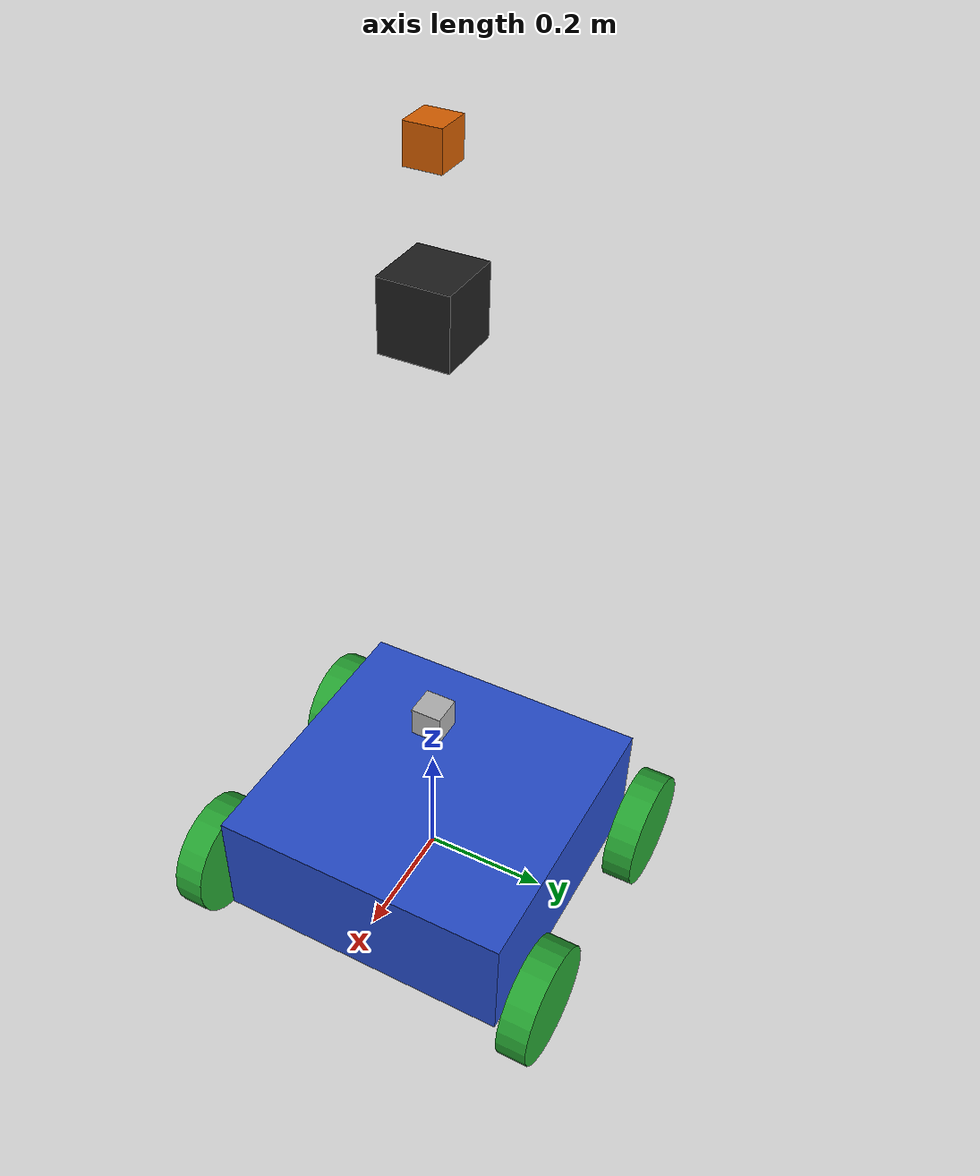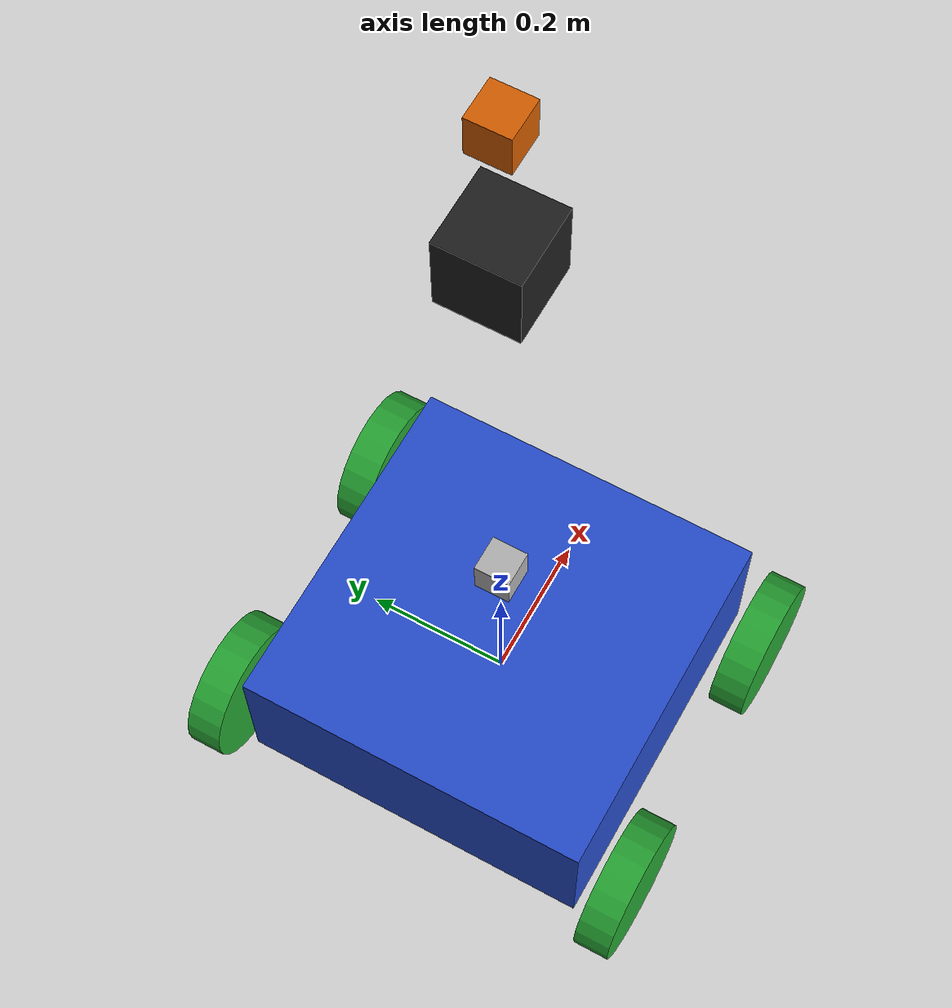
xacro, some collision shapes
<?xml version='1.0'?>

<robot name="simple_robot" xmlns:xacro="http://www.ros.org/wiki/xacro">
	<xacro:property name="robot_name" value="simple_robot" />
	<xacro:property name="robot_chassis_mass" value="15"/>
	<xacro:property name="robot_chassis_length" value="0.2"/>
	<xacro:property name="robot_chassis_radius" value="0.25"/>
	<xacro:property name="robot_caster_wheel_radius" value="0.05"/>
	<xacro:property name="robot_caster_wheel_radius_collision" value="0.0499"/>

	<xacro:property name="robot_wheel_mass" value="5"/>
	<xacro:property name="robot_wheel_length" value="0.05"/>
	<xacro:property name="robot_wheel_radius" value="0.1"/>

	<xacro:property name="camera_mass" value="0.1"/>
	<xacro:property name="hokoyu_mass" value="1e-5"/>
	<xacro:property name="gps_mass" value="0.1"/>
	<xacro:property name="r200_cam_rgb_px" value="0.005"/>
	<xacro:property name="r200_cam_rgb_py" value="0.018"/>
	<xacro:property name="r200_cam_rgb_pz" value="0.013"/>
	<xacro:property name="r200_cam_depth_offset" value="0.01"/>

	<!-- Make Chassis of Bot -->
	<link name="chassis">
		<pose>0 0 0.1 0 0 0</pose>

		<inertial>
			<mass value="${robot_chassis_mass}"/>
      		<origin xyz="0.0 0 0" rpy=" 0 0 0"/>

      		<inertia
      			ixx="0.147116667" ixy="0" ixz="0"
      			iyy="0.334951167" iyz="0"
      			izz="0.3978345"
      		/>
		</inertial>

		<collision name="collision">
			<origin xyz="0 0 0.05" rpy=" 0 0 0"/>
			<geometry>
				<box size="0.5 0.5 0.2"/>
			</geometry>
		</collision>

		<visual name="chassis_visual">
			<origin xyz="0 0 0.05" rpy=" 0 0 0"/>
			<geometry>
				<box size="0.5 0.5 0.2"/>
			</geometry>

		</visual>

	</link>

	<!-- Right Wheel Back -->
	<link name="right_wheel_back">
		<inertial>
			<mass value="${robot_wheel_mass}"/>
			<origin xyz="0 0 0" rpy="0 1.5707 1.5707"/>
			<inertia
				ixx="0.1" ixy="0.0" ixz="0.0"
				iyy="0.1" iyz="0.0"
				izz="0.1"
			/>
		</inertial>

		<visual>
			<origin xyz="0 0 0" rpy="0 1.5707 1.5707"/>
			<geometry>
				<cylinder radius="${robot_wheel_radius}" length="${robot_wheel_length}"/>
			</geometry>
		</visual>

		<collision>
			<origin xyz="0 0 0" rpy="0 1.5707 1.5707"/>
			<geometry>
				<cylinder radius="${robot_wheel_radius}" length="${robot_wheel_length}"/>
			</geometry>
		</collision>

	</link>

	<!-- Right Wheel Front-->
	<link name="right_wheel_front">
		<inertial>
			<mass value="${robot_wheel_mass}"/>
			<origin xyz="0 0 0" rpy="0 1.5707 1.5707"/>
			<inertia
				ixx="0.1" ixy="0.0" ixz="0.0"
				iyy="0.1" iyz="0.0"
				izz="0.1"
			/>
		</inertial>

		<visual>
			<origin xyz="0 0 0" rpy="0 1.5707 1.5707"/>
			<geometry>
				<cylinder radius="${robot_wheel_radius}" length="${robot_wheel_length}"/>
			</geometry>
		</visual>

		<collision>
			<origin xyz="0 0 0" rpy="0 1.5707 1.5707"/>
			<geometry>
				<cylinder radius="${robot_wheel_radius}" length="${robot_wheel_length}"/>
			</geometry>
		</collision>

	</link>

	<!-- Left wheel Back-->
	<link name="left_wheel_back">
		<inertial>
			<mass value="${robot_wheel_mass}"/>
			<origin xyz="0 0 0" rpy="0 1.5707 1.5707"/>
			<inertia
				ixx="0.1" ixy="0.0" ixz="0.0"
				iyy="0.1" iyz="0.0"
				izz="0.1"
			/>
		</inertial>

		<visual>
			<origin xyz="0 0 0" rpy="0 1.5707 1.5707"/>
			<geometry>
				<cylinder radius="${robot_wheel_radius}" length="${robot_wheel_length}"/>
			</geometry>
		</visual>

		<collision>
			<origin xyz="0 0 0" rpy="0 1.5707 1.5707"/>
			<geometry>
				<cylinder radius="${robot_wheel_radius}" length="${robot_wheel_length}"/>
			</geometry>
		</collision>

	</link>

	<!-- Left wheel Front-->
	<link name="left_wheel_front">
		<inertial>
			<mass value="${robot_wheel_mass}"/>
			<origin xyz="0 0 0" rpy="0 1.5707 1.5707"/>
			<inertia
				ixx="0.1" ixy="0.0" ixz="0.0"
				iyy="0.1" iyz="0.0"
				izz="0.1"
			/>
		</inertial>

		<visual>
			<origin xyz="0 0 0" rpy="0 1.5707 1.5707"/>
			<geometry>
				<cylinder radius="${robot_wheel_radius}" length="${robot_wheel_length}"/>
			</geometry>
		</visual>

		<collision>
			<origin xyz="0 0 0" rpy="0 1.5707 1.5707"/>
			<geometry>
				<cylinder radius="${robot_wheel_radius}" length="${robot_wheel_length}"/>
			</geometry>
		</collision>

	</link>

	<!-- Camera -->
	<link name="camera_link">
		<inertial>
			<mass value="${camera_mass}"/>
			<origin xyz="0 0 0" rpy="0 0 0"/>
			<inertia
		        ixx="1e-6" ixy="0.0" ixz="0.0"
		        iyy="1e-6" iyz="0.0"
		        izz="1e-6"
		      />
		</inertial>

		<visual>
			<origin xyz="0 0 0" rpy="0 0 0"/>
			<geometry>
				<box size="0.05 0.05 0.05"/>
			</geometry>
		</visual>

		<collision>
			<origin xyz="0 0 0" rpy="0 0 0"/>
			<geometry>
				<box size="0.05 0.05 0.05"/>
			</geometry>
		</collision>
	</link>

	<!-- Hokuyo Lidar -->
	<link name="base_scan">
		<inertial>
			<mass value="${hokoyu_mass}"/>
			<origin xyz="0 0 0" rpy="0 0 0"/>

			<inertia
		        ixx="1e-6" ixy="0.0" ixz="0.0"
		        iyy="1e-6" iyz="0.0"
		        izz="1e-6"
		      />
		</inertial>

		<visual>
			<origin xyz="0 0 0" rpy="0 0 0"/>
			<geometry>
				<mesh filename="package://turtlebot3_description/meshes/sensors/lds.stl" scale="0.001 0.001 0.001"/>
			</geometry>
		</visual>

		<collision>
			<origin xyz="0 0 0" rpy="0 0 0"/>
			<geometry>
				<box size="0.1 0.1 0.1"/>
			</geometry>
		</collision>
	</link>

	<!-- Gps Lidar -->
	<link name="gps_link">
		<inertial>
			<mass value="${gps_mass}"/>
			<origin xyz="0 0 0" rpy="0 0 0"/>
			<inertia
		        ixx="1e-6" ixy="0.0" ixz="0.0"
		        iyy="1e-6" iyz="0.0"
		        izz="1e-6"
		      />
		</inertial>

		<visual>
			<origin xyz="0 0 0" rpy="0 0 0"/>
			<geometry>
				<box size="0.05 0.05 0.05"/>
			</geometry>
		</visual>

		<collision>
			<origin xyz="0 0 0" rpy="0 0 0"/>
			<geometry>
				<box size="0.05 0.05 0.05"/>
			</geometry>
		</collision>
	</link>

	<!-- Project center to the ground -->
	<link name="robot_footprint"></link>

	<!-- Define Joints -->

	<!-- Right Wheel Joint Back-->
	<joint type="continuous" name="right_wheel_hinge_back">
	    <origin xyz="-0.2 -0.30 0" rpy="0 0 0" />
	    <parent link="chassis"/>
	    <child link="right_wheel_back" />
	    <axis xyz="0 1 0" rpy="0 0 0" />
	    <limit effort="10000" velocity="1000" />
	    <dynamics damping="1.0" friction="1.0" />
	</joint>

	<!-- Right Wheel Joint Front-->
	<joint type="continuous" name="right_wheel_hinge_front">
	    <origin xyz="0.2 -0.30 0" rpy="0 0 0" />
	    <parent link="chassis"/>
	    <child link="right_wheel_front" />
	    <axis xyz="0 1 0" rpy="0 0 0" />
	    <limit effort="10000" velocity="1000" />
	    <dynamics damping="1.0" friction="1.0" />
	</joint>

	<!-- Left Wheel Joint Back-->
	<joint type="continuous" name="left_wheel_hinge_back">
	    <origin xyz="-0.2 0.30 0" rpy="0 0 0" />
	    <parent link="chassis"/>
	    <child link="left_wheel_back" />
	    <axis xyz="0 1 0" rpy="0 0 0" />
	    <limit effort="10000" velocity="1000" />
	    <dynamics damping="1.0" friction="1.0" />
	</joint>

	<!-- Left Wheel Joint Front-->
	<joint type="continuous" name="left_wheel_hinge_front">
	    <origin xyz="0.2 0.30 0" rpy="0 0 0" />
	    <parent link="chassis"/>
	    <child link="left_wheel_front" />
	    <axis xyz="0 1 0" rpy="0 0 0" />
	    <limit effort="10000" velocity="1000" />
	    <dynamics damping="1.0" friction="1.0" />
	</joint>

	<!-- Camera Joint -->
	<joint name="camera_joint" type="fixed">
		<origin xyz="0 0 1.2" rpy="0 0 0" />
		<parent link="chassis"/>
		<child link="camera_link" />
		<axis xyz="0 1 0"/>
	</joint>

	<!-- Hokoyu Joint -->
	<joint name="scan_joint" type="fixed">
	    <origin xyz="0 0 1" rpy="0 0 0" />
	    <parent link="chassis"/>
	    <child link="base_scan" />
	    <axis xyz="0 1 0"/>
	</joint>

		<!-- Gps Joint -->
	<joint name="gps_joint" type="fixed">
	    <origin xyz="0 0 0.3" rpy="0 0 0" />
	    <parent link="chassis"/>
	    <child link="gps_link" />
	    <axis xyz="0 1 0"/>
	</joint>

	<joint name="robot_footprint_joint" type="fixed">
		<origin xyz="0 0 0" rpy="0 0 0" />
		<parent link="robot_footprint"/>
		<child link="chassis" />
	</joint>

	<joint name="camera_rgb_joint" type="fixed">
		<origin xyz="${r200_cam_rgb_px} ${r200_cam_rgb_py} ${r200_cam_rgb_pz}" rpy="0 0 0"/>
		<parent link="camera_link"/>
		<child link="camera_rgb_frame"/>
	</joint>
	<link name="camera_rgb_frame"/>

	<joint name="camera_rgb_optical_joint" type="fixed">
		<origin xyz="0 0 0" rpy="-1.57 0 -1.57"/>
		<parent link="camera_rgb_frame"/>
		<child link="camera_rgb_optical_frame"/>
	</joint>
	<link name="camera_rgb_optical_frame"/>

	<joint name="camera_depth_joint" type="fixed">
		<origin xyz="${r200_cam_rgb_px} ${r200_cam_rgb_py + r200_cam_depth_offset} ${r200_cam_rgb_pz}" rpy="0 0 0"/>
		<parent link="camera_link"/>
		<child link="camera_depth_frame"/>
	</joint>
	<link name="camera_depth_frame"/>

	<joint name="camera_depth_optical_joint" type="fixed">
		<origin xyz="0 0 0" rpy="-1.57 0 -1.57"/>
		<parent link="camera_depth_frame"/>
		<child link="camera_depth_optical_frame"/>
	</joint>
	<link name="camera_depth_optical_frame"/>

	<!-- Color of bot -->
	<gazebo reference="left_wheel_front">
		<material>Gazebo/Green</material>
		<kp>1000000.0</kp> <!-- kp and kd for rubber -->
		<kd>100.0</kd>
		<mu1>1.0</mu1>
		<mu2>1.0</mu2>
		<maxVel>1.0</maxVel>
		<minDepth>0.00</minDepth>
	</gazebo>

	<gazebo reference="left_wheel_back">
		<material>Gazebo/Green</material>
		<kp>1000000.0</kp> <!-- kp and kd for rubber -->
		<kd>100.0</kd>
		<mu1>1.0</mu1>
		<mu2>1.0</mu2>
		<maxVel>1.0</maxVel>
		<minDepth>0.00</minDepth>
	</gazebo>

	<gazebo reference="right_wheel_front">
		<material>Gazebo/Green</material>
		<kp>1000000.0</kp> <!-- kp and kd for rubber -->
		<kd>100.0</kd>
		<mu1>1.0</mu1>
		<mu2>1.0</mu2>
		<maxVel>1.0</maxVel>
		<minDepth>0.00</minDepth>
	</gazebo>
	<gazebo reference="right_wheel_back">
		<material>Gazebo/Green</material>
		<kp>1000000.0</kp> <!-- kp and kd for rubber -->
		<kd>100.0</kd>
		<mu1>1.0</mu1>
		<mu2>1.0</mu2>
		<maxVel>1.0</maxVel>
		<minDepth>0.00</minDepth>
	</gazebo>

	<gazebo reference="camera">
		<material>Gazebo/Red</material>
	</gazebo>

	<gazebo reference="chassis">
		<material>Gazebo/Blue</material>
	</gazebo>

	<!-- Motor, Camera and Lidar Simulation -->
	<xacro:include filename="$(find simple_robot)/urdf/atom.gazebo" />

</robot>
